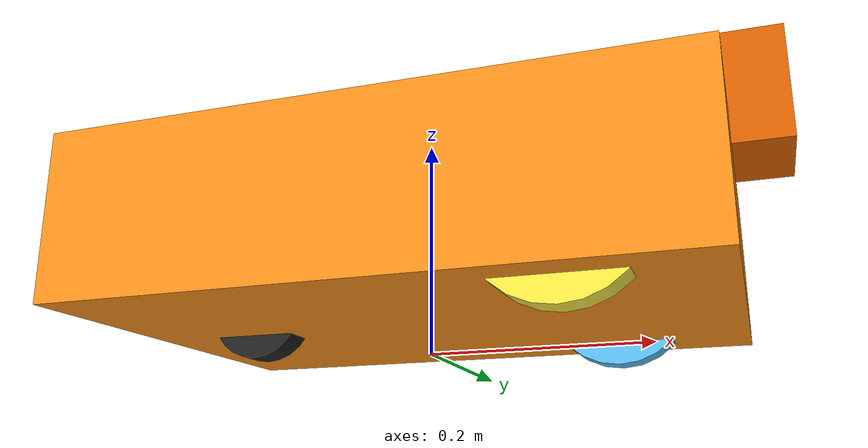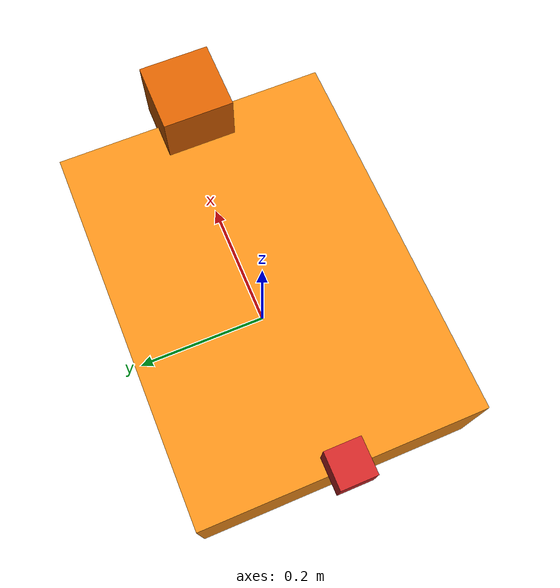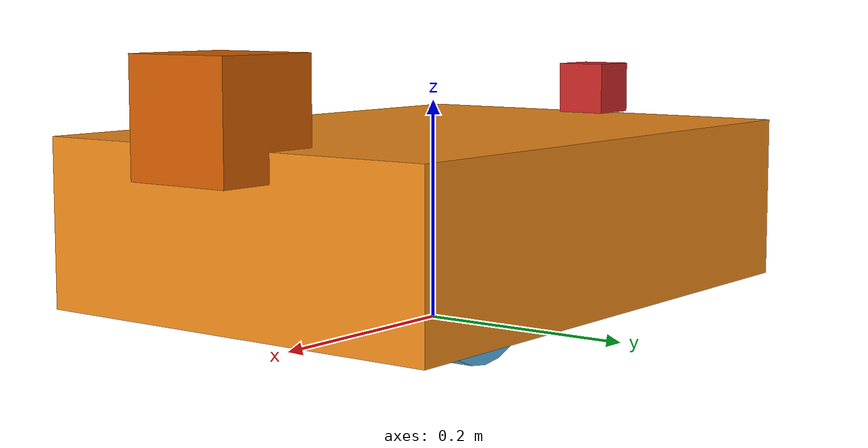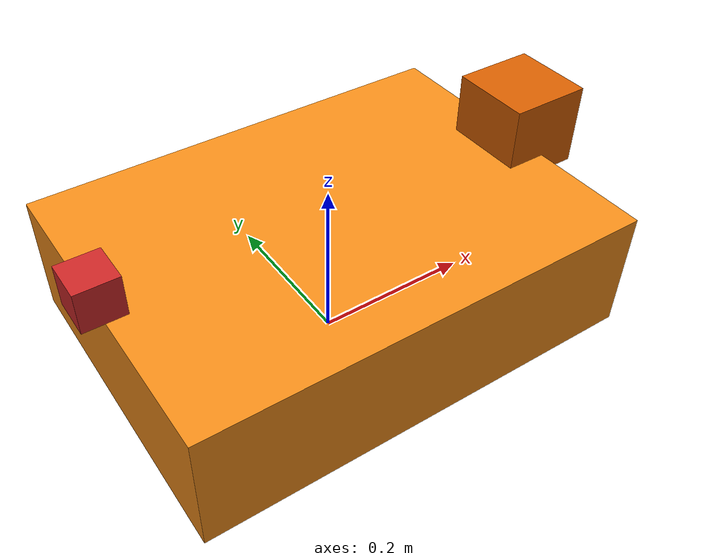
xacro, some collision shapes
<?xml version="1.0"?>
<!-- Revolute-Revolute Manipulator -->
<robot name="icart_mini" xmlns:xacro="http://www.ros.org/wiki/xacro">
  <!-- Constants for robot dimensions -->
  <xacro:property name="PI" value="3.1415926535897931"/>
  <xacro:property name="camera_link" value="0.05"/> <!-- Size of square 'camera' box -->
  <xacro:property name="hokuyo_link" value="0.1" /> <!-- Size of square 'hokuyo' box -->

  <!-- Import all Gazebo-customization elements, including Gazebo colors -->
  <xacro:include filename="$(find icart_mini_description)/urdf/icart_mini.gazebo" />
  <!-- Import Rviz colors -->
  <xacro:include filename="$(find icart_mini_description)/urdf/materials.xacro" />

  <!-- Used for fixing robot to Gazebo 'base_link' -->

  <!-- Base Link -->
  <link name="base_link">
    <collision>
      <origin xyz="0 0 0.1" rpy="0 0 0"/>
      <geometry>
	<box size=".55 .4 .15"/>
      </geometry>
    </collision>

    <visual>
      <origin xyz="0 0 0.1" rpy="0 0 0"/>
      <geometry>
	<box size=".55 .4 .15"/>
      </geometry>
      <material name="orange"/>
    </visual>

    <collision name="collision">
      <origin xyz="-0.175 0.0 0.05" rpy="0 1.5707 1.5707"/>
      <geometry>
        <cylinder  length="0.03" radius="0.04625"/>
      </geometry>
    </collision>
    <visual name="visual">
      <origin xyz="-0.175 0.0 0.05" rpy="0 1.5707 1.5707"/>
      <geometry>
        <cylinder  length="0.03" radius="0.04625"/>
      </geometry>
    </visual>

    <collision name="collision">
      <origin xyz="0.175 0.0 0.05" rpy="0 1.5707 1.5707"/>
      <geometry>
        <cylinder  length="0.03" radius="0.04625"/>
      </geometry>
    </collision>

    <inertial>
       <mass value="20" />
       <origin xyz="0 0 0" rpy="0 0 0"/>
       <inertia ixx="1" ixy="0" ixz="0" iyy="1" iyz="0" izz="1" />
    </inertial>
  </link>

  <link name="visual_left_wheel">
    <visual name="visual">
      <origin xyz="0 0.0 0" rpy="0 1.5707 1.5707"/>
      <geometry>
        <cylinder  length="0.03" radius="0.0725"/>
      </geometry>
    </visual>
  </link>

  <joint type="fixed" name="visual_left_wheel_hinge">
    <origin xyz="0.15 0.15 0.075" rpy="0 0 0"/>
    <child link="visual_left_wheel">visual_left_wheel</child>
    <parent link="base_link">base_link</parent>
    <axis xyz="0 1 0"/>
  </joint>

  <link name="left_wheel">
    <collision name="collision">
      <origin xyz="0 0.0 0" rpy="0 1.5707 1.5707"/>
      <geometry>
         <cylinder  length="0.03" radius="0.0725"/>
      </geometry>
    </collision>
    <inertial>
      <mass value="1" />
      <origin xyz="0 0.0 0"/>
      <inertia ixx="0.1" ixy="0" ixz="0" iyy="0.1" iyz="0" izz="0.1" />
    </inertial>
  </link>

  <joint type="revolute" name="left_wheel_hinge">
    <origin xyz="0 0.15 0.075" rpy="0 0 0"/>
    <child link="left_wheel">left_wheel</child>
    <parent link="base_link">base_link</parent>
    <axis xyz="0 1 0"/>
    <limit effort="100" velocity="100.0"  lower="-5000" upper="5000" />
  </joint>

  <link name="visual_right_wheel">
    <visual name="visual">
      <origin xyz="0 0.0 0" rpy="0 1.5707 1.5707"/>
      <geometry>
        <cylinder  length="0.03" radius="0.0725"/>
      </geometry>
    </visual>
  </link>

  <joint type="fixed" name="visual_right_wheel_hinge">
    <origin xyz="0.15 -0.15 0.075" rpy="0 0 0"/>
    <child link="visual_right_wheel">visual_right_wheel</child>
    <parent link="base_link">base_link</parent>
    <axis xyz="0 1 0"/>
  </joint>

  <link name="right_wheel">
    <collision name="collision">
      <origin xyz="0 0.0 0" rpy="0 1.5707 1.5707"/>
      <geometry>
         <cylinder  length="0.03" radius="0.0725"/>
      </geometry>
    </collision>
    <inertial>
      <mass value="1" />
      <origin xyz="0 0.0 0"/>
      <inertia ixx="0.1" ixy="0" ixz="0" iyy="0.1" iyz="0" izz="0.1" />
    </inertial>
  </link>

  <joint type="revolute" name="right_wheel_hinge">
    <origin xyz="0 -0.15 0.075" rpy="0 0 0"/>
    <child link="right_wheel">right_wheel</child>
    <parent link="base_link">base_link</parent>
    <axis xyz="0 1 0"/>
    <limit effort="100" velocity="100.0"  lower="-5000" upper="5000" />
  </joint>

  <joint name="hokuyo_joint" type="fixed">
    <axis xyz="0 1 0"/>
    <origin xyz="0.275 0 0.2" rpy="0 0 0"/>
    <parent link="base_link"/>
    <child link="hokuyo_link"/>
  </joint>

  <link name="hokuyo_link">
    <collision>
      <origin xyz="0 0 0" rpy="0 0 0"/>
      <geometry>
        <box size="${hokuyo_link} ${hokuyo_link} ${hokuyo_link}"/>
      </geometry>
    </collision>

    <visual>
      <origin xyz="0 0 0" rpy="0 0 0"/>
      <geometry>
        <mesh filename="package://icart_mini_description/meshes/hokuyo.dae"/>
      </geometry>
    </visual>

    <inertial>
      <mass value="0.0001"/>
      <origin xyz="0 0 0" rpy="0 0 0"/>
      <inertia ixx="0.0001" ixy="0" ixz="0" iyy="0.0001" iyz="0" izz="0.0001"/>
    </inertial>
  </link>

  <joint name="camera_joint" type="fixed">
    <axis xyz="0 1 0" />
    <origin xyz="-0.275 0 0.2" rpy="0 0 0"/>
    <parent link="base_link"/>
    <child link="camera_link"/>
  </joint>

  <link name="camera_link">
    <collision>
      <origin xyz="0 0 0" rpy="0 0 0"/>
      <geometry>
        <box size="${camera_link} ${camera_link} ${camera_link}"/>
      </geometry>
    </collision>

    <visual>
      <origin xyz="0 0 0" rpy="0 0 0"/>
      <geometry>
        <box size="${camera_link} ${camera_link} ${camera_link}"/>
      </geometry>
      <material name="red"/>
    </visual>

    <inertial>
      <mass value="0.0001"/>
      <origin xyz="0 0 0" rpy="0 0 0"/>
      <inertia ixx="0.0001" ixy="0" ixz="0" iyy="0.0001" iyz="0" izz="0.0001"/>
    </inertial>

  </link>

  <transmission name="tran1">
    <type>transmission_interface/SimpleTransmission</type>
    <joint name="left_wheel_hinge">
      <hardwareInterface>VelocityJointInterface</hardwareInterface>
    </joint>
  <actuator name="left_motor">
      <hardwareInterface>VelocityJointInterface</hardwareInterface>
      <mechanicalReduction>1</mechanicalReduction>
    </actuator>
  </transmission>

  <transmission name="tran2">
    <type>transmission_interface/SimpleTransmission</type>
    <joint name="right_wheel_hinge">
      <hardwareInterface>VelocityJointInterface</hardwareInterface>
    </joint>
  <actuator name="right_motor">
      <hardwareInterface>VelocityJointInterface</hardwareInterface>
      <mechanicalReduction>1</mechanicalReduction>
    </actuator>
  </transmission>

</robot>
